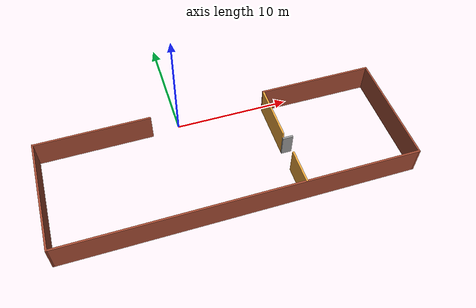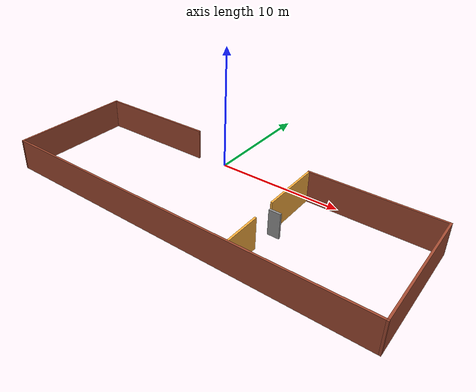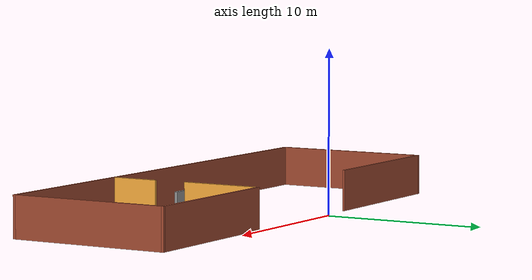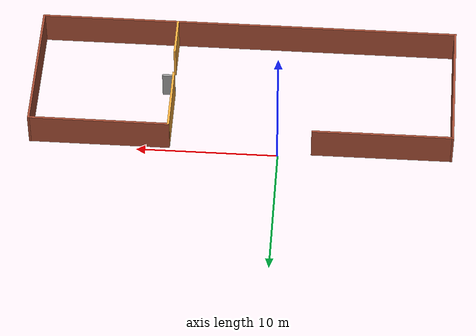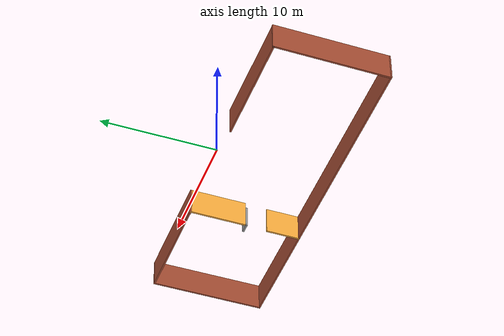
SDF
<?xml version='1.0'?>
<sdf version='1.6'>
  <model name='room'>
    <pose frame=''>2.64102 -5.25938 0 0 -0 0</pose>
    <link name='Door_0'>
      <collision name='Door_0_Collision'>
        <geometry>
          <box>
            <size>0.9 0.17 2</size>
          </box>
        </geometry>
        <pose frame=''>0 0 1 0 -0 0</pose>
      </collision>
      <visual name='Door_0_Visual'>
        <pose frame=''>0 0 1 0 -0 0</pose>
        <geometry>
          <box>
            <size>0.9 0.17 2</size>
          </box>
        </geometry>
        <material>
          <script>
            <uri>file://media/materials/scripts/gazebo.material</uri>
            <name>Gazebo/Grey</name>
          </script>
        </material>
      </visual>
      <pose frame=''>5.46193 -0.128638 0 0 -0 0</pose>
    </link>
    <link name='Wall_0'>
      <collision name='Wall_0_Collision'>
        <geometry>
          <box>
            <size>10.0348 0.15 2.5</size>
          </box>
        </geometry>
        <pose frame=''>0 0 1.25 0 -0 0</pose>
      </collision>
      <visual name='Wall_0_Visual'>
        <pose frame=''>0 0 1.25 0 -0 0</pose>
        <geometry>
          <box>
            <size>10.0348 0.15 2.5</size>
          </box>
        </geometry>
        <material>
          <script>
            <uri>file://media/materials/scripts/gazebo.material</uri>
            <name>Gazebo/Bricks</name>
          </script>
          <ambient>1 1 1 1</ambient>
        </material>
        <meta>
          <layer>0</layer>
        </meta>
      </visual>
      <pose frame=''>-14.9075 -0.004382 0 0 -0 1.56728</pose>
    </link>
    <link name='Wall_2'>
      <collision name='Wall_2_Collision'>
        <geometry>
          <box>
            <size>9.93037 0.15 2.5</size>
          </box>
        </geometry>
        <pose frame=''>0 0 1.25 0 -0 0</pose>
      </collision>
      <visual name='Wall_2_Visual'>
        <pose frame=''>0 0 1.25 0 -0 0</pose>
        <geometry>
          <box>
            <size>9.93037 0.15 2.5</size>
          </box>
        </geometry>
        <material>
          <script>
            <uri>file://media/materials/scripts/gazebo.material</uri>
            <name>Gazebo/Bricks</name>
          </script>
          <ambient>1 1 1 1</ambient>
        </material>
        <meta>
          <layer>0</layer>
        </meta>
      </visual>
      <pose frame=''>-9.97378 4.92931 0 0 -0 0.00357</pose>
    </link>
    <link name='Wall_4'>
      <collision name='Wall_4_Collision'>
        <geometry>
          <box>
            <size>30 0.15 2.5</size>
          </box>
        </geometry>
        <pose frame=''>0 0 1.25 0 -0 0</pose>
      </collision>
      <visual name='Wall_4_Visual'>
        <pose frame=''>0 0 1.25 0 -0 0</pose>
        <geometry>
          <box>
            <size>30 0.15 2.5</size>
          </box>
        </geometry>
        <material>
          <script>
            <uri>file://media/materials/scripts/gazebo.material</uri>
            <name>Gazebo/Bricks</name>
          </script>
          <ambient>1 1 1 1</ambient>
        </material>
        <meta>
          <layer>0</layer>
        </meta>
      </visual>
      <pose frame=''>0.000131 -4.94677 0 0 -0 0</pose>
    </link>
    <link name='Wall_5'>
      <collision name='Wall_5_Collision'>
        <geometry>
          <box>
            <size>10 0.15 2.5</size>
          </box>
        </geometry>
        <pose frame=''>0 0 1.25 0 -0 0</pose>
      </collision>
      <visual name='Wall_5_Visual'>
        <pose frame=''>0 0 1.25 0 -0 0</pose>
        <geometry>
          <box>
            <size>10 0.15 2.5</size>
          </box>
        </geometry>
        <material>
          <script>
            <uri>file://media/materials/scripts/gazebo.material</uri>
            <name>Gazebo/Bricks</name>
          </script>
          <ambient>1 1 1 1</ambient>
        </material>
        <meta>
          <layer>0</layer>
        </meta>
      </visual>
      <pose frame=''>14.9251 -0.021774 0 0 -0 1.5708</pose>
    </link>
    <link name='Wall_6'>
      <collision name='Wall_6_Collision'>
        <geometry>
          <box>
            <size>10 0.15 2.5</size>
          </box>
        </geometry>
        <pose frame=''>0 0 1.25 0 -0 0</pose>
      </collision>
      <visual name='Wall_6_Visual'>
        <pose frame=''>0 0 1.25 0 -0 0</pose>
        <geometry>
          <box>
            <size>10 0.15 2.5</size>
          </box>
        </geometry>
        <material>
          <script>
            <uri>file://media/materials/scripts/gazebo.material</uri>
            <name>Gazebo/Bricks</name>
          </script>
          <ambient>1 1 1 1</ambient>
        </material>
        <meta>
          <layer>0</layer>
        </meta>
      </visual>
      <pose frame=''>10.0001 4.90323 0 0 -0 3.14159</pose>
    </link>
    <link name='Wall_7'>
      <collision name='Wall_7_Collision'>
        <geometry>
          <box>
            <size>5 0.15 2.5</size>
          </box>
        </geometry>
        <pose frame=''>0 0 1.25 0 -0 0</pose>
      </collision>
      <visual name='Wall_7_Visual'>
        <pose frame=''>0 0 1.25 0 -0 0</pose>
        <geometry>
          <box>
            <size>5 0.15 2.5</size>
          </box>
        </geometry>
        <material>
          <script>
            <uri>file://media/materials/scripts/gazebo.material</uri>
            <name>Gazebo/Grey</name>
          </script>
          <ambient>0.988235 0.686275 0.243137 1</ambient>
        </material>
        <meta>
          <layer>0</layer>
        </meta>
      </visual>
      <pose frame=''>5.07513 2.47823 0 0 -0 -1.5708</pose>
    </link>
    <link name='Wall_9'>
      <collision name='Wall_9_Collision'>
        <geometry>
          <box>
            <size>3 0.15 2.5</size>
          </box>
        </geometry>
        <pose frame=''>0 0 1.25 0 -0 0</pose>
      </collision>
      <visual name='Wall_9_Visual'>
        <pose frame=''>0 0 1.25 0 -0 0</pose>
        <geometry>
          <box>
            <size>3 0.15 2.5</size>
          </box>
        </geometry>
        <material>
          <script>
            <uri>file://media/materials/scripts/gazebo.material</uri>
            <name>Gazebo/Grey</name>
          </script>
          <ambient>0.988235 0.686275 0.243137 1</ambient>
        </material>
        <meta>
          <layer>0</layer>
        </meta>
      </visual>
      <pose frame=''>5.17425 -3.48948 0 0 -0 1.5708</pose>
    </link>
    <static>1</static>
  </model>
</sdf>
